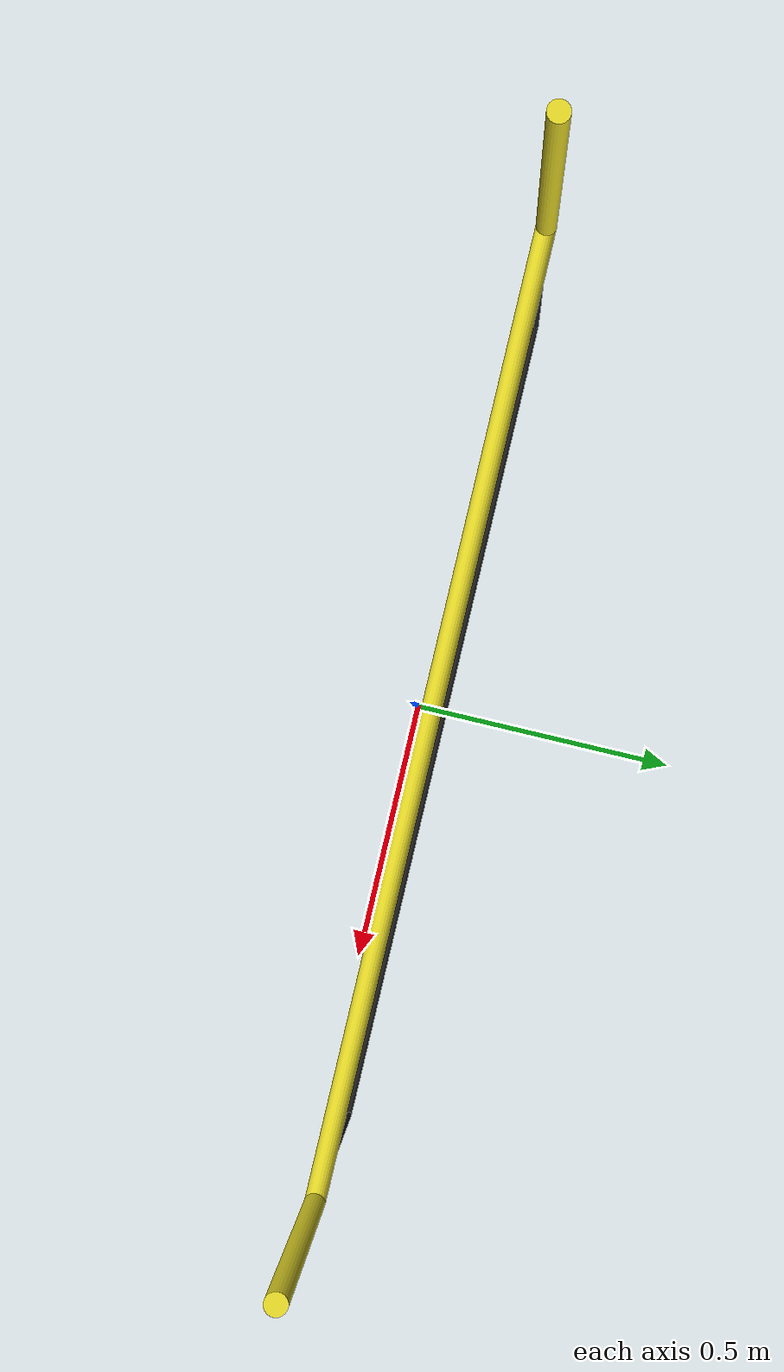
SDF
<?xml version='1.0'?>
<sdf version='1.5'>

  <model name='channel'>
    <pose>0 0 0 0 0 0</pose>
    <self_collide> 0 </self_collide>
    <static> 1</static>

    <link name='bottom'>
      <pose>0 0 -1.2 0 1.5707 0</pose>
      <visual name='bottom_vis'>
        <geometry>
          <cylinder>
            <radius>0.0254</radius>
            <length>2.4</length>
          </cylinder>
        </geometry>
        <material>
          <script>
            <uri>file://media/materials/scripts/gazebo.material</uri>
            <name>Gazebo/Yellow</name>
          </script>
          <diffuse>0.6 0.6 0 1</diffuse>
        </material>
      </visual>
      <collision name='bottom_collide'>
        <pose>0 0 -1.2 0 1.5707 0</pose>
        <geometry>
          <cylinder>
            <radius>0.0254</radius>
            <length>2.4</length>
          </cylinder>
        </geometry>
      </collision>
    </link>

    <link name='left'>
      <pose>-1.2 0 -0.6 0 0 0</pose>
      <visual name='left_vis'>
        <geometry>
          <cylinder>
            <radius>0.0254</radius>
            <length>1.2</length>
          </cylinder>
        </geometry>
        <material>
          <script>
            <uri>file://media/materials/scripts/gazebo.material</uri>
            <name>Gazebo/Yellow</name>
          </script>
          <diffuse>0.6 0.6 0 1</diffuse>
        </material>
      </visual>
      <collision name='left_collide'>
        <pose>-1.2 0 0.6 0 0 0</pose>
        <geometry>
          <cylinder>
            <radius>0.0254</radius>
            <length>1.2</length>
          </cylinder>
        </geometry>
      </collision>
    </link>

    <link name='right'>
      <pose>1.2 0 -0.6 0 0 0</pose>
      <visual name='right_vis'>
        <geometry>
          <cylinder>
            <radius>0.0254</radius>
            <length>1.2</length>
          </cylinder>
        </geometry>
        <material>
          <script>
            <uri>file://media/materials/scripts/gazebo.material</uri>
            <name>Gazebo/Yellow</name>
          </script>
          <diffuse>0.6 0.6 0 1</diffuse>
        </material>
      </visual>
      <collision name='right_collide'>
        <pose>1.2 0 0.6 0 0 0</pose>
        <geometry>
          <cylinder>
            <radius>0.0254</radius>
            <length>1.2</length>
          </cylinder>
        </geometry>
      </collision>
    </link>

    <link name='left_tether'>
      <pose>-1.2 0 -2.0 0 0 0</pose>
      <visual name='left_tether_vis'>
        <geometry>
          <cylinder>
            <radius>0.01</radius>
            <length>1.5</length>
          </cylinder>
        </geometry>
        <material>
          <script>
            <uri>file://media/materials/scripts/gazebo.material</uri>
            <name>Gazebo/FlatBlack</name>
          </script>
          <diffuse>0.3 0.3 0.3 1</diffuse>
        </material>
      </visual>
      <collision name='left_tether_collide'>
        <pose>-1.2 0 -2.0 0 0 0</pose>
        <geometry>
          <cylinder>
            <radius>0.01</radius>
            <length>1.5</length>
          </cylinder>
        </geometry>
      </collision>
    </link>

    <link name='right_tether'>
      <pose>1.2 0 -2.0 0 0 0</pose>
      <visual name='right_tether_vis'>
        <geometry>
          <cylinder>
            <radius>0.01</radius>
            <length>1.5</length>
          </cylinder>
        </geometry>
        <material>
          <script>
            <uri>file://media/materials/scripts/gazebo.material</uri>
            <name>Gazebo/FlatBlack</name>
          </script>
          <diffuse>0.3 0.3 0.3 1</diffuse>
        </material>
      </visual>
      <collision name='right_tether_collide'>
        <pose>1.2 0 -2.0 0 0 0</pose>
        <geometry>
          <cylinder>
            <radius>0.01</radius>
            <length>1.5</length>
          </cylinder>
        </geometry>
      </collision>
    </link>

    <link name='floor'>
      <pose>0 0 -2.75 0 1.5707 0</pose>
      <visual name='floor_vis'>
        <geometry>
          <cylinder>
            <radius>0.01</radius>
            <length>2.4</length>
          </cylinder>
        </geometry>
        <material>
          <script>
            <uri>file://media/materials/scripts/gazebo.material</uri>
            <name>Gazebo/FlatBlack</name>
          </script>
          <diffuse>0.3 0.3 0.3 1</diffuse>
        </material>
      </visual>
      <collision name='floor_collide'>
        <pose>0 0 -2.75 0 1.5707 0</pose>
        <geometry>
          <cylinder>
            <radius>0.01</radius>
            <length>2.4</length>
          </cylinder>
        </geometry>
      </collision>
    </link>
  </model>
</sdf>
